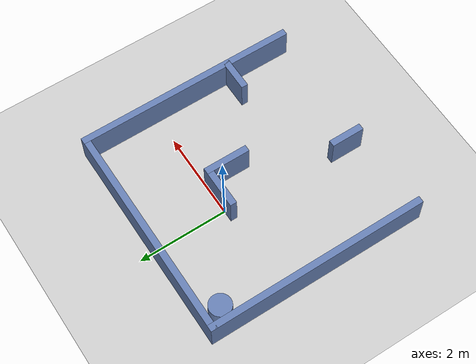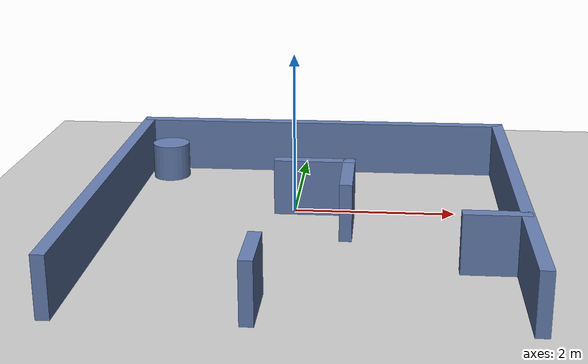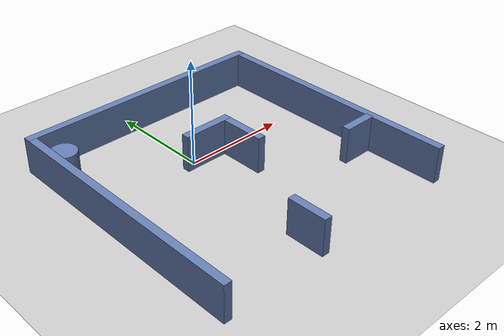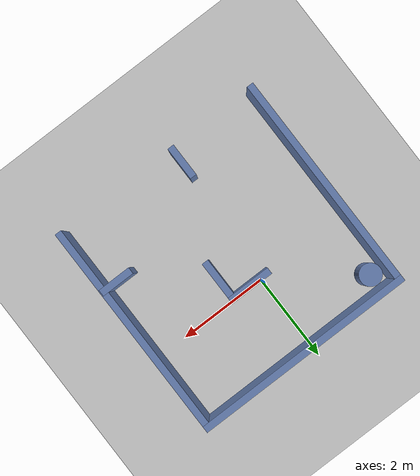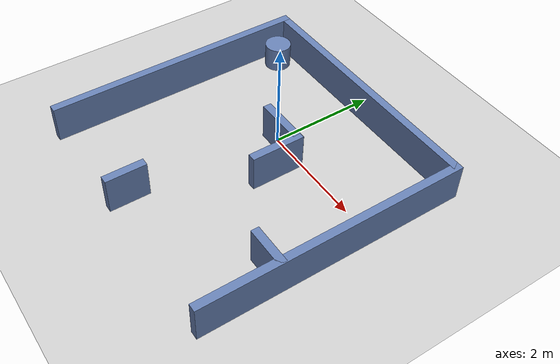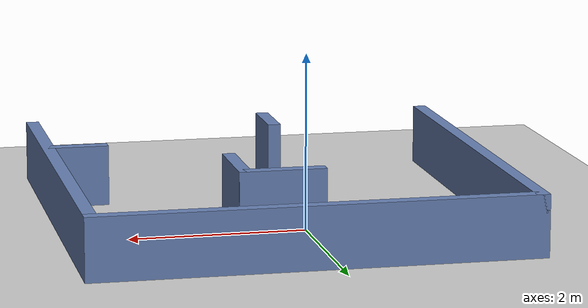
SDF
<sdf version="1.7">
 <world name="default">
  <light name="sun" type="directional">
   <pose>0 0 10 0 -0 0</pose>
   <diffuse>0.8 0.8 0.8 1</diffuse>
   <specular>0.2 0.2 0.2 1</specular>
   <attenuation>
    <range>1000</range>
    <constant>0.9</constant>
    <linear>0.01</linear>
    <quadratic>0.001</quadratic>
   </attenuation>
   <direction>-0.5 0.1 -0.9</direction>
   <spot><inner_angle>0</inner_angle><outer_angle>0</outer_angle><falloff>0</falloff></spot>
  </light>
  <model name="ground_plane">
   <static>1</static>
   <link name="link">
    <collision name="collision">
     <geometry><plane><normal>0 0 1</normal><size>100 100</size></plane></geometry>
     <surface>
      <contact><collide_bitmask>65535</collide_bitmask></contact>
      <friction><ode><mu>100</mu><mu2>50</mu2></ode></friction>
     </surface>
    </collision>
    <visual name="visual">
     <cast_shadows>0</cast_shadows>
     <geometry><plane><normal>0 0 1</normal><size>100 100</size></plane></geometry>
     <material>
      <script><uri>file://media/materials/scripts/gazebo.material</uri><name>Gazebo/Grey</name></script>
     </material>
    </visual>
   </link>
  </model>
  <gravity>0 0 -9.8</gravity>
  <magnetic_field>6e-06 2.3e-05 -4.2e-05</magnetic_field>
  <atmosphere type="adiabatic"/>
  <physics type="ode">
   <max_step_size>0.001</max_step_size>
   <real_time_factor>1</real_time_factor>
   <real_time_update_rate>1000</real_time_update_rate>
  </physics>
  <scene><ambient>0.4 0.4 0.4 1</ambient><background>0.7 0.7 0.7 1</background><shadows>1</shadows></scene>
  <spherical_coordinates>
   <surface_model>EARTH_WGS84</surface_model>
   <latitude_deg>0</latitude_deg>
   <longitude_deg>0</longitude_deg>
   <elevation>0</elevation>
   <heading_deg>0</heading_deg>
  </spherical_coordinates>
  <model name="hexa_yard">
   <link name="Wall_10">
    <collision name="Wall_10_Collision">
     <geometry><box><size>1 0.15 0.7</size></box></geometry>
     <pose>0 0 0.35 0 -0 0</pose>
    </collision>
    <visual name="Wall_10_Visual">
     <pose>0 0 0.35 0 -0 0</pose>
     <geometry><box><size>1 0.15 0.7</size></box></geometry>
     <material>
      <script><uri>file://media/materials/scripts/gazebo.material</uri><name>Gazebo/Grey</name></script>
      <ambient>0.4 0.5 0.7 1</ambient>
     </material>
     <meta><layer>0</layer></meta>
    </visual>
    <pose>0.257116 -0.072 0.0 0 -0 3.14159</pose>
   </link>
   <link name="Wall_15">
    <collision name="Wall_15_Collision">
     <geometry><box><size>0.75 0.15 0.7</size></box></geometry>
     <pose>0 0 0.35 0 -0 0</pose>
    </collision>
    <visual name="Wall_15_Visual">
     <pose>0 0 0.35 0 -0 0</pose>
     <geometry><box><size>0.75 0.15 0.7</size></box></geometry>
     <material>
      <script><uri>file://media/materials/scripts/gazebo.material</uri><name>Gazebo/Grey</name></script>
      <ambient>0.4 0.5 0.7 1</ambient>
     </material>
     <meta><layer>0</layer></meta>
    </visual>
    <pose>-0.178884 -2.8706 0.0 0 -0 1.5708</pose>
   </link>
   <link name="Wall_2">
    <collision name="Wall_2_Collision">
     <geometry><box><size>5 0.15 0.7</size></box></geometry>
     <pose>0 0 0.35 0 -0 0</pose>
    </collision>
    <visual name="Wall_2_Visual">
     <pose>0 0 0.35 0 -0 0</pose>
     <geometry><box><size>5 0.15 0.7</size></box></geometry>
     <material>
      <script><uri>file://media/materials/scripts/gazebo.material</uri><name>Gazebo/Grey</name></script>
      <ambient>0.4 0.5 0.7 1</ambient>
     </material>
     <meta><layer>0</layer></meta>
    </visual>
    <pose>0.229116 1.6644 0.0 0 -0 0</pose>
   </link>
   <link name="Wall_21">
    <collision name="Wall_21_Collision">
     <geometry><box><size>0.75 0.15 0.7</size></box></geometry>
     <pose>0 0 0.35 0 -0 0</pose>
    </collision>
    <visual name="Wall_21_Visual">
     <pose>0 0 0.35 0 -0 0</pose>
     <geometry><box><size>0.75 0.15 0.7</size></box></geometry>
     <material>
      <script><uri>file://media/materials/scripts/gazebo.material</uri><name>Gazebo/Grey</name></script>
      <ambient>0.4 0.5 0.7 1</ambient>
     </material>
     <meta><layer>0</layer></meta>
    </visual>
    <pose>2.33412 -1.7716 0.0 0 -0 3.14159</pose>
   </link>
   <link name="Wall_23">
    <collision name="Wall_23_Collision">
     <geometry><box><size>1 0.15 0.7</size></box></geometry>
     <pose>0 0 0.35 0 -0 0</pose>
    </collision>
    <visual name="Wall_23_Visual">
     <pose>0 0 0.35 0 -0 0</pose>
     <geometry><box><size>1 0.15 0.7</size></box></geometry>
     <material>
      <script><uri>file://media/materials/scripts/gazebo.material</uri><name>Gazebo/Grey</name></script>
      <ambient>0.4 0.5 0.7 1</ambient>
     </material>
     <meta><layer>0</layer></meta>
    </visual>
    <pose>0.682116 -0.5 0.0 0 0 -1.5708</pose>
   </link>
   <link name="Wall_3">
    <collision name="Wall_3_Collision">
     <geometry><box><size>5 0.15 0.7</size></box></geometry>
     <pose>0 0 0.35 0 -0 0</pose>
    </collision>
    <visual name="Wall_3_Visual">
     <pose>0 0 0.35 0 -0 0</pose>
     <geometry><box><size>5 0.15 0.7</size></box></geometry>
     <material>
      <script><uri>file://media/materials/scripts/gazebo.material</uri><name>Gazebo/Grey</name></script>
      <ambient>0.4 0.5 0.7 1</ambient>
     </material>
     <meta><layer>0</layer></meta>
    </visual>
    <pose>2.65412 -0.760602 0.0 0 0 -1.5708</pose>
   </link>
   <link name="Wall_4">
    <collision name="Wall_4_Collision">
     <geometry><box><size>5 0.15 0.7</size></box></geometry>
     <pose>0 0 0.35 0 -0 0</pose>
    </collision>
    <visual name="Wall_4_Visual">
     <pose>0 0 0.35 0 -0 0</pose>
     <geometry><box><size>5 0.15 0.7</size></box></geometry>
     <material>
      <script><uri>file://media/materials/scripts/gazebo.material</uri><name>Gazebo/Grey</name></script>
      <ambient>0.4 0.5 0.7 1</ambient>
     </material>
     <meta><layer>0</layer></meta>
    </visual>
    <pose>-2.19588 -0.760602 0.0 0 -0 1.5708</pose>
   </link>
   <link name="Wall_5">
    <collision name="Wall_5_Collision">
     <geometry><box><size>5 0.15 0.7</size></box></geometry>
     <pose>0 0 0.35 0 -0 0</pose>
    </collision>
    <visual name="Wall_5_Visual">
     <pose>0 0 0.35 0 -0 0</pose>
     <geometry><box><size>5 0.15 0.7</size></box></geometry>
     <material>
      <script><uri>file://media/materials/scripts/gazebo.material</uri><name>Gazebo/Grey</name></script>
      <ambient>0.4 0.5 0.7 1</ambient>
     </material>
     <meta><layer>0</layer></meta>
    </visual>
    <pose>-2.19588 -0.760602 0.0 0 -0 1.5708</pose>
   </link>
   <static>1</static>
  </model>
  <model name="unit_cylinder">
   <pose>-1.82679 1.25988 0.235971 0 -0 0</pose>
   <link name="link">
    <inertial>
     <mass>1</mass>
     <inertia><ixx>0.145833</ixx><ixy>0</ixy><ixz>0</ixz><iyy>0.145833</iyy><iyz>0</iyz><izz>0.125</izz></inertia>
    </inertial>
    <collision name="collision">
     <geometry><cylinder><radius>0.246568</radius><length>0.471956</length></cylinder></geometry>
    </collision>
    <visual name="visual">
     <geometry><cylinder><radius>0.246568</radius><length>0.471956</length></cylinder></geometry>
     <material>
      <script><name>Gazebo/Grey</name><uri>file://media/materials/scripts/gazebo.material</uri></script>
      <ambient>0.4 0.5 0.7 1</ambient>
     </material>
    </visual>
   </link>
  </model>
 </world>
</sdf>
